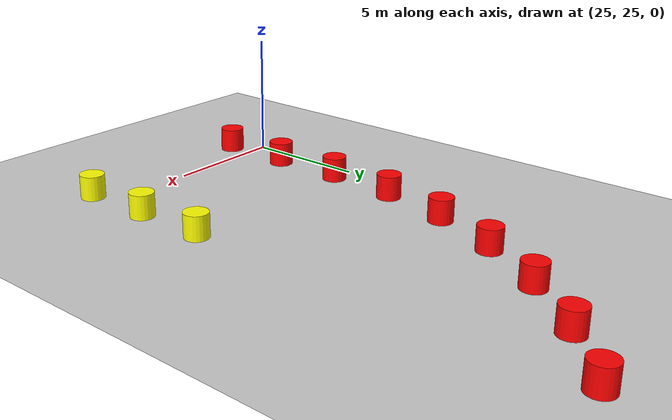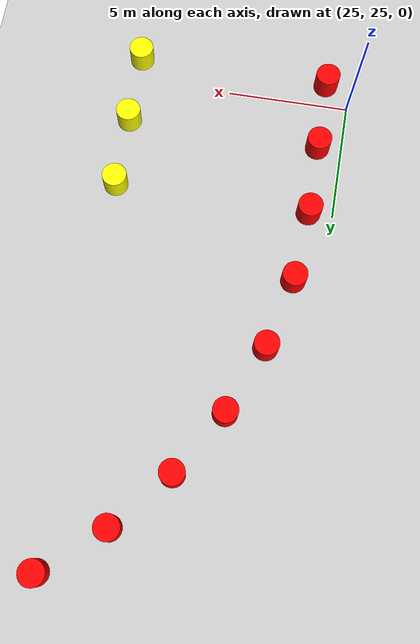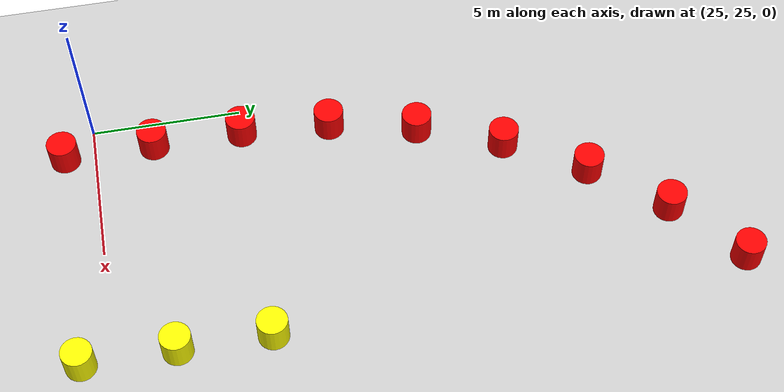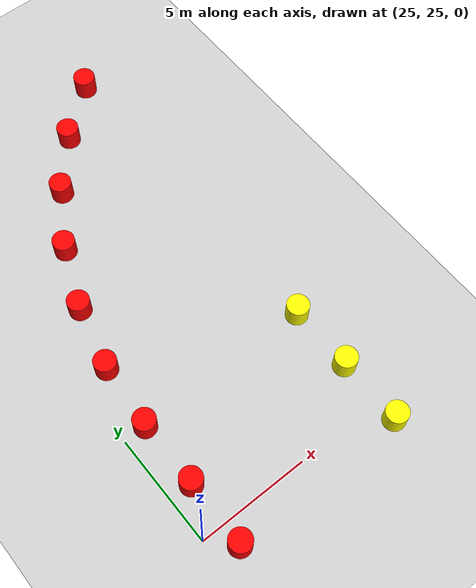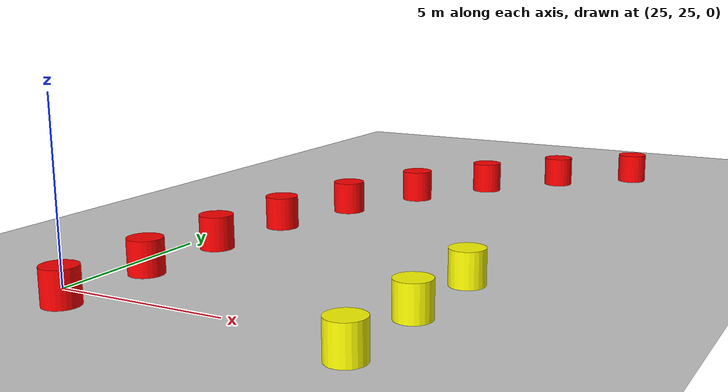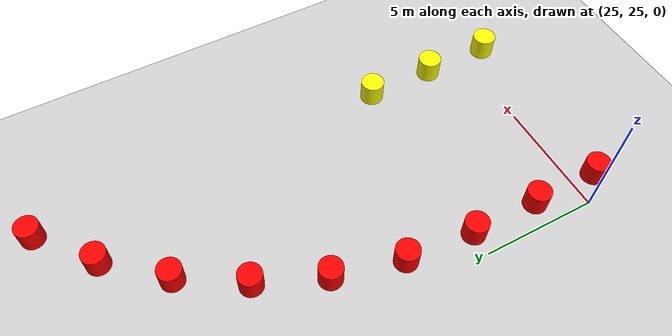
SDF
<sdf version="1.9">
 <world name="empty">
  <model name="ground_plane">
   <static>true</static>
   <link name="link">
    <collision name="collision">
     <geometry><plane><normal>0 0 1</normal><size>1000 1000</size></plane></geometry>
    </collision>
    <visual name="visual">
     <geometry><plane><normal>0 0 1</normal><size>1000 1000</size></plane></geometry>
     <material>
      <ambient>0.8 0.8 0.8 1</ambient>
      <diffuse>0.8 0.8 0.8 1</diffuse>
      <specular>0.8 0.8 0.8 1</specular>
     </material>
    </visual>
    <inertial>
     <mass>1</mass>
     <inertia><ixx>1</ixx><ixy>0</ixy><ixz>0</ixz><iyy>1</iyy><iyz>0</iyz><izz>1</izz></inertia>
    </inertial>
   </link>
  </model>
  <model name="red_cone_15">
   <pose>26.0 24.0 0.5 0 -0 0</pose>
   <link name="cylinder_link">
    <inertial>
     <inertia>
      <ixx>0.14580000000000001</ixx>
      <ixy>0</ixy>
      <ixz>0</ixz>
      <iyy>0.14580000000000001</iyy>
      <iyz>0</iyz>
      <izz>0.125</izz>
     </inertia>
     <mass>1</mass>
    </inertial>
    <collision name="cylinder_collision">
     <geometry><cylinder><radius>0.5</radius><length>1</length></cylinder></geometry>
    </collision>
    <visual name="cylinder_visual">
     <geometry><cylinder><radius>0.5</radius><length>1</length></cylinder></geometry>
     <material><ambient>1 0 0 1</ambient><diffuse>1 0 0 1</diffuse><specular>1 1 1 1</specular></material>
    </visual>
   </link>
   <static>false</static>
  </model>
  <model name="red_cone_16">
   <pose>26.0 27.0 0.5 0 -0 0</pose>
   <link name="cylinder_link">
    <inertial>
     <inertia>
      <ixx>0.14580000000000001</ixx>
      <ixy>0</ixy>
      <ixz>0</ixz>
      <iyy>0.14580000000000001</iyy>
      <iyz>0</iyz>
      <izz>0.125</izz>
     </inertia>
     <mass>1</mass>
    </inertial>
    <collision name="cylinder_collision">
     <geometry><cylinder><radius>0.5</radius><length>1</length></cylinder></geometry>
    </collision>
    <visual name="cylinder_visual">
     <geometry><cylinder><radius>0.5</radius><length>1</length></cylinder></geometry>
     <material><ambient>1 0 0 1</ambient><diffuse>1 0 0 1</diffuse><specular>1 1 1 1</specular></material>
    </visual>
   </link>
   <static>false</static>
  </model>
  <model name="red_cone_17">
   <pose>26.0 30.0 0.5 0 -0 0</pose>
   <link name="cylinder_link">
    <inertial>
     <inertia>
      <ixx>0.14580000000000001</ixx>
      <ixy>0</ixy>
      <ixz>0</ixz>
      <iyy>0.14580000000000001</iyy>
      <iyz>0</iyz>
      <izz>0.125</izz>
     </inertia>
     <mass>1</mass>
    </inertial>
    <collision name="cylinder_collision">
     <geometry><cylinder><radius>0.5</radius><length>1</length></cylinder></geometry>
    </collision>
    <visual name="cylinder_visual">
     <geometry><cylinder><radius>0.5</radius><length>1</length></cylinder></geometry>
     <material><ambient>1 0 0 1</ambient><diffuse>1 0 0 1</diffuse><specular>1 1 1 1</specular></material>
    </visual>
   </link>
   <static>false</static>
  </model>
  <model name="red_cone_18">
   <pose>26.0 29.999999999999996 0.5 0 -0 0</pose>
   <link name="cylinder_link">
    <inertial>
     <inertia>
      <ixx>0.14580000000000001</ixx>
      <ixy>0</ixy>
      <ixz>0</ixz>
      <iyy>0.14580000000000001</iyy>
      <iyz>0</iyz>
      <izz>0.125</izz>
     </inertia>
     <mass>1</mass>
    </inertial>
    <collision name="cylinder_collision">
     <geometry><cylinder><radius>0.5</radius><length>1</length></cylinder></geometry>
    </collision>
    <visual name="cylinder_visual">
     <geometry><cylinder><radius>0.5</radius><length>1</length></cylinder></geometry>
     <material><ambient>1 0 0 1</ambient><diffuse>1 0 0 1</diffuse><specular>1 1 1 1</specular></material>
    </visual>
   </link>
   <static>false</static>
  </model>
  <model name="red_cone_19">
   <pose>26.23635045975519 32.987550155373256 0.5 0 -0 0</pose>
   <link name="cylinder_link">
    <inertial>
     <inertia>
      <ixx>0.14580000000000001</ixx>
      <ixy>0</ixy>
      <ixz>0</ixz>
      <iyy>0.14580000000000001</iyy>
      <iyz>0</iyz>
      <izz>0.125</izz>
     </inertia>
     <mass>1</mass>
    </inertial>
    <collision name="cylinder_collision">
     <geometry><cylinder><radius>0.5</radius><length>1</length></cylinder></geometry>
    </collision>
    <visual name="cylinder_visual">
     <geometry><cylinder><radius>0.5</radius><length>1</length></cylinder></geometry>
     <material><ambient>1 0 0 1</ambient><diffuse>1 0 0 1</diffuse><specular>1 1 1 1</specular></material>
    </visual>
   </link>
   <static>false</static>
  </model>
  <model name="red_cone_20">
   <pose>26.939521676933765 35.90077306308712 0.5 0 -0 0</pose>
   <link name="cylinder_link">
    <inertial>
     <inertia>
      <ixx>0.14580000000000001</ixx>
      <ixy>0</ixy>
      <ixz>0</ixz>
      <iyy>0.14580000000000001</iyy>
      <iyz>0</iyz>
      <izz>0.125</izz>
     </inertia>
     <mass>1</mass>
    </inertial>
    <collision name="cylinder_collision">
     <geometry><cylinder><radius>0.5</radius><length>1</length></cylinder></geometry>
    </collision>
    <visual name="cylinder_visual">
     <geometry><cylinder><radius>0.5</radius><length>1</length></cylinder></geometry>
     <material><ambient>1 0 0 1</ambient><diffuse>1 0 0 1</diffuse><specular>1 1 1 1</specular></material>
    </visual>
   </link>
   <static>false</static>
  </model>
  <model name="red_cone_21">
   <pose>28.092019457802376 38.66719066276187 0.5 0 -0 0</pose>
   <link name="cylinder_link">
    <inertial>
     <inertia>
      <ixx>0.14580000000000001</ixx>
      <ixy>0</ixy>
      <ixz>0</ixz>
      <iyy>0.14580000000000001</iyy>
      <iyz>0</iyz>
      <izz>0.125</izz>
     </inertia>
     <mass>1</mass>
    </inertial>
    <collision name="cylinder_collision">
     <geometry><cylinder><radius>0.5</radius><length>1</length></cylinder></geometry>
    </collision>
    <visual name="cylinder_visual">
     <geometry><cylinder><radius>0.5</radius><length>1</length></cylinder></geometry>
     <material><ambient>1 0 0 1</ambient><diffuse>1 0 0 1</diffuse><specular>1 1 1 1</specular></material>
    </visual>
   </link>
   <static>false</static>
  </model>
  <model name="red_cone_22">
   <pose>29.665170814953115 41.21797726265454 0.5 0 -0 0</pose>
   <link name="cylinder_link">
    <inertial>
     <inertia>
      <ixx>0.14580000000000001</ixx>
      <ixy>0</ixy>
      <ixz>0</ixz>
      <iyy>0.14580000000000001</iyy>
      <iyz>0</iyz>
      <izz>0.125</izz>
     </inertia>
     <mass>1</mass>
    </inertial>
    <collision name="cylinder_collision">
     <geometry><cylinder><radius>0.5</radius><length>1</length></cylinder></geometry>
    </collision>
    <visual name="cylinder_visual">
     <geometry><cylinder><radius>0.5</radius><length>1</length></cylinder></geometry>
     <material><ambient>1 0 0 1</ambient><diffuse>1 0 0 1</diffuse><specular>1 1 1 1</specular></material>
    </visual>
   </link>
   <static>false</static>
  </model>
  <model name="red_cone_23">
   <pose>31.61983732243577 43.489671853752306 0.5 0 -0 0</pose>
   <link name="cylinder_link">
    <inertial>
     <inertia>
      <ixx>0.14580000000000001</ixx>
      <ixy>0</ixy>
      <ixz>0</ixz>
      <iyy>0.14580000000000001</iyy>
      <iyz>0</iyz>
      <izz>0.125</izz>
     </inertia>
     <mass>1</mass>
    </inertial>
    <collision name="cylinder_collision">
     <geometry><cylinder><radius>0.5</radius><length>1</length></cylinder></geometry>
    </collision>
    <visual name="cylinder_visual">
     <geometry><cylinder><radius>0.5</radius><length>1</length></cylinder></geometry>
     <material><ambient>1 0 0 1</ambient><diffuse>1 0 0 1</diffuse><specular>1 1 1 1</specular></material>
    </visual>
   </link>
   <static>false</static>
  </model>
  <model name="red_cone_24">
   <pose>33.907388840491215 45.4257569559468 0.5 0 -0 0</pose>
   <link name="cylinder_link">
    <inertial>
     <inertia>
      <ixx>0.14580000000000001</ixx>
      <ixy>0</ixy>
      <ixz>0</ixz>
      <iyy>0.14580000000000001</iyy>
      <iyz>0</iyz>
      <izz>0.125</izz>
     </inertia>
     <mass>1</mass>
    </inertial>
    <collision name="cylinder_collision">
     <geometry><cylinder><radius>0.5</radius><length>1</length></cylinder></geometry>
    </collision>
    <visual name="cylinder_visual">
     <geometry><cylinder><radius>0.5</radius><length>1</length></cylinder></geometry>
     <material><ambient>1 0 0 1</ambient><diffuse>1 0 0 1</diffuse><specular>1 1 1 1</specular></material>
    </visual>
   </link>
   <static>false</static>
  </model>
  <model name="yellow_cone_19">
   <pose>34.0 24.0 0.5 0 -0 0</pose>
   <link name="cylinder_link">
    <inertial>
     <inertia>
      <ixx>0.14580000000000001</ixx>
      <ixy>0</ixy>
      <ixz>0</ixz>
      <iyy>0.14580000000000001</iyy>
      <iyz>0</iyz>
      <izz>0.125</izz>
     </inertia>
     <mass>1</mass>
    </inertial>
    <collision name="cylinder_collision">
     <geometry><cylinder><radius>0.5</radius><length>1</length></cylinder></geometry>
    </collision>
    <visual name="cylinder_visual">
     <geometry><cylinder><radius>0.5</radius><length>1</length></cylinder></geometry>
     <material><ambient>1 1 0 1</ambient><diffuse>1 1 0 1</diffuse><specular>1 1 1 1</specular></material>
    </visual>
   </link>
   <static>false</static>
  </model>
  <model name="yellow_cone_20">
   <pose>34.0 27.0 0.5 0 -0 0</pose>
   <link name="cylinder_link">
    <inertial>
     <inertia>
      <ixx>0.14580000000000001</ixx>
      <ixy>0</ixy>
      <ixz>0</ixz>
      <iyy>0.14580000000000001</iyy>
      <iyz>0</iyz>
      <izz>0.125</izz>
     </inertia>
     <mass>1</mass>
    </inertial>
    <collision name="cylinder_collision">
     <geometry><cylinder><radius>0.5</radius><length>1</length></cylinder></geometry>
    </collision>
    <visual name="cylinder_visual">
     <geometry><cylinder><radius>0.5</radius><length>1</length></cylinder></geometry>
     <material><ambient>1 1 0 1</ambient><diffuse>1 1 0 1</diffuse><specular>1 1 1 1</specular></material>
    </visual>
   </link>
   <static>false</static>
  </model>
  <model name="yellow_cone_21">
   <pose>34.0 30.0 0.5 0 -0 0</pose>
   <link name="cylinder_link">
    <inertial>
     <inertia>
      <ixx>0.14580000000000001</ixx>
      <ixy>0</ixy>
      <ixz>0</ixz>
      <iyy>0.14580000000000001</iyy>
      <iyz>0</iyz>
      <izz>0.125</izz>
     </inertia>
     <mass>1</mass>
    </inertial>
    <collision name="cylinder_collision">
     <geometry><cylinder><radius>0.5</radius><length>1</length></cylinder></geometry>
    </collision>
    <visual name="cylinder_visual">
     <geometry><cylinder><radius>0.5</radius><length>1</length></cylinder></geometry>
     <material><ambient>1 1 0 1</ambient><diffuse>1 1 0 1</diffuse><specular>1 1 1 1</specular></material>
    </visual>
   </link>
   <static>false</static>
  </model>
 </world>
</sdf>
